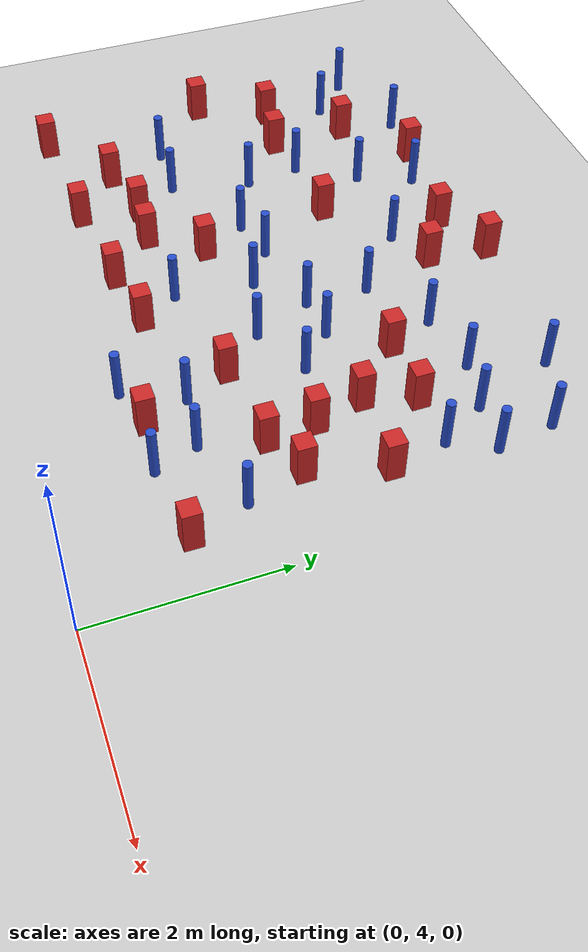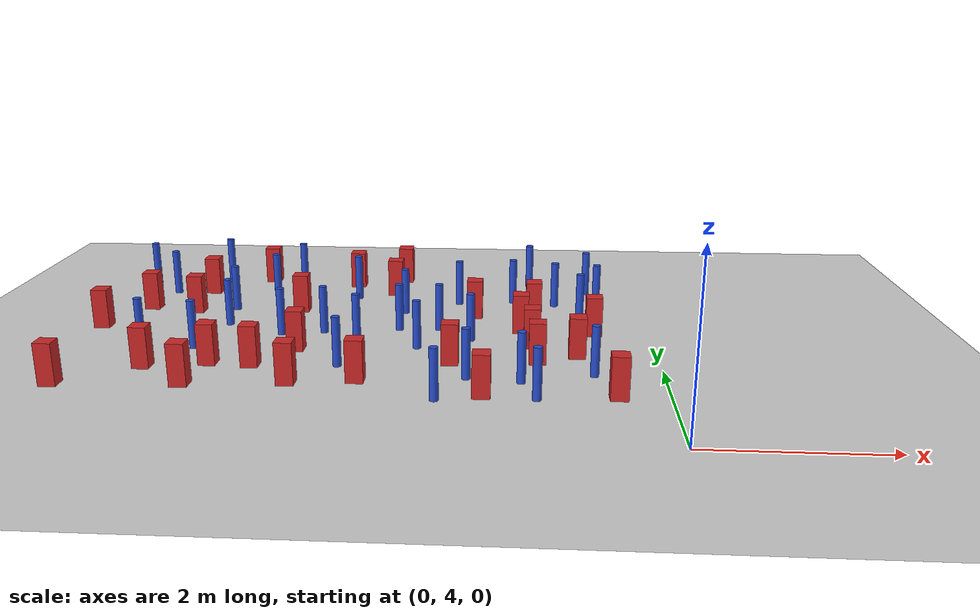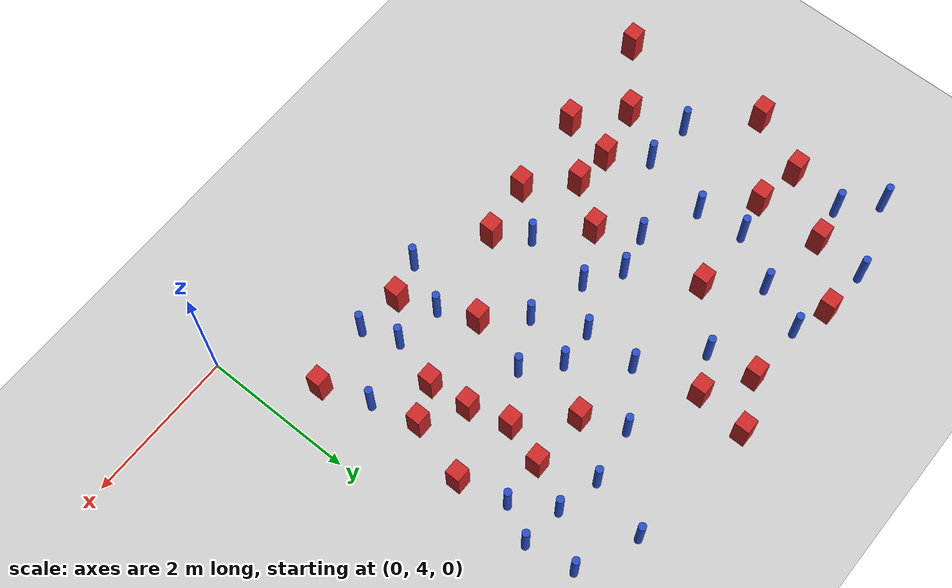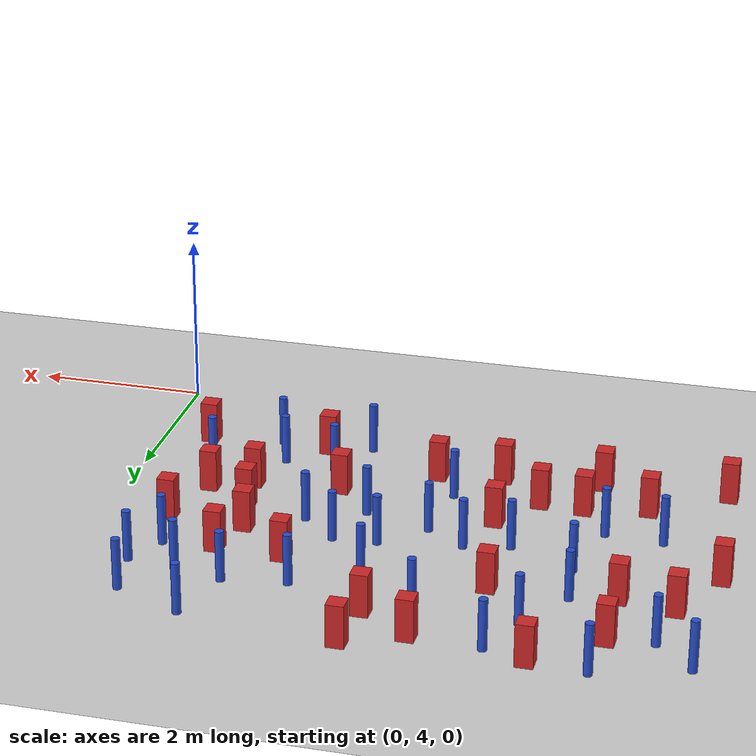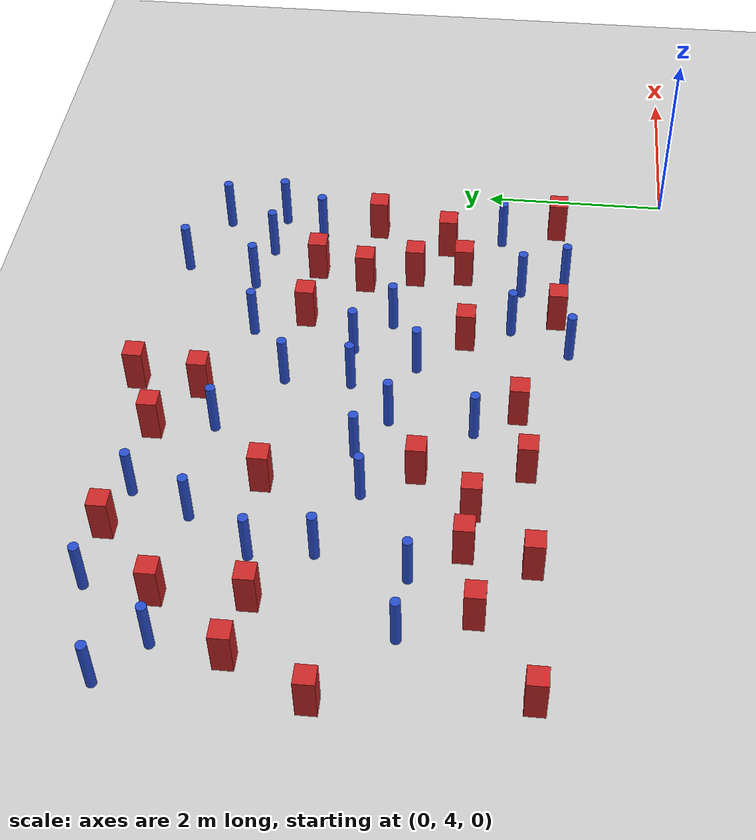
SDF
<sdf version="1.6">
 <world name="default">
  <model name="ground_plane">
   <static>1</static>
   <link name="link">
    <collision name="collision">
     <geometry><plane><normal>0 0 1</normal><size>100 100</size></plane></geometry>
     <surface><friction><ode><mu>100</mu><mu2>50</mu2></ode></friction></surface>
    </collision>
    <visual name="visual">
     <cast_shadows>0</cast_shadows>
     <geometry><plane><normal>0 0 1</normal><size>100 100</size></plane></geometry>
     <material>
      <ambient>1.0 1.0 1.0 1.0</ambient>
      <diffuse>0.8 0.8 0.8 1.0</diffuse>
      <specular>0.01 0.01 0.01 1.000000</specular>
     </material>
    </visual>
   </link>
  </model>
  <model name="square_post_obstacle0">
   <static>true</static>
   <pose>-2.43062324862 6.12856150608 1.91545236811e-07 -7.35059704564e-06 1.12565212e-07 2.39332434364e-05</pose>
   <link name="link">
    <pose>0 0 0.25 0 -0 0</pose>
    <inertial>
     <mass>100</mass>
     <inertia>
      <ixx>0.166667</ixx>
      <ixy>0</ixy>
      <ixz>0</ixz>
      <iyy>0.166667</iyy>
      <iyz>0</iyz>
      <izz>0.166667</izz>
     </inertia>
    </inertial>
    <collision name="collision"><geometry><box><size>.2 .2 .5</size></box></geometry></collision>
    <visual name="visual">
     <geometry><box><size>.2 .2 .5</size></box></geometry>
     <material>
      <script><name>Gazebo/Red</name><uri>file://media/materials/scripts/gazebo.material</uri></script>
     </material>
    </visual>
   </link>
  </model>
  <model name="pole_obstacle2">
   <static>true</static>
   <pose>-6.46132631482 8.68634267327 7.38925637345e-09 -8.471706928e-08 1.24976765081e-08 -1.74513093015e-07</pose>
   <link name="link">
    <pose>0 0 0.3 0 -0 0</pose>
    <inertial>
     <mass>1</mass>
     <inertia><ixx>0.145833</ixx><ixy>0</ixy><ixz>0</ixz><iyy>0.145833</iyy><iyz>0</iyz><izz>0.125</izz></inertia>
    </inertial>
    <collision name="collision">
     <geometry><cylinder><radius>0.05</radius><length>.6</length></cylinder></geometry>
    </collision>
    <visual name="visual">
     <geometry><cylinder><radius>0.05</radius><length>.6</length></cylinder></geometry>
     <material>
      <script><name>Gazebo/Blue</name><uri>file://media/materials/scripts/gazebo.material</uri></script>
     </material>
    </visual>
   </link>
  </model>
  <model name="pole_obstacle3">
   <static>true</static>
   <pose>-3.7190828894 5.9537499802 7.38925637345e-09 -8.47170692798e-08 1.24976765033e-08 -1.74513093019e-07</pose>
   <link name="link">
    <pose>0 0 0.3 0 -0 0</pose>
    <inertial>
     <mass>1</mass>
     <inertia><ixx>0.145833</ixx><ixy>0</ixy><ixz>0</ixz><iyy>0.145833</iyy><iyz>0</iyz><izz>0.125</izz></inertia>
    </inertial>
    <collision name="collision">
     <geometry><cylinder><radius>0.05</radius><length>.6</length></cylinder></geometry>
    </collision>
    <visual name="visual">
     <geometry><cylinder><radius>0.05</radius><length>.6</length></cylinder></geometry>
     <material>
      <script><name>Gazebo/Blue</name><uri>file://media/materials/scripts/gazebo.material</uri></script>
     </material>
    </visual>
   </link>
  </model>
  <model name="pole_obstacle6">
   <static>true</static>
   <pose>-5.550322576 6.45025046927 7.38925637345e-09 -8.47170692796e-08 1.24976764786e-08 -1.74513093032e-07</pose>
   <link name="link">
    <pose>0 0 0.3 0 -0 0</pose>
    <inertial>
     <mass>1</mass>
     <inertia><ixx>0.145833</ixx><ixy>0</ixy><ixz>0</ixz><iyy>0.145833</iyy><iyz>0</iyz><izz>0.125</izz></inertia>
    </inertial>
    <collision name="collision">
     <geometry><cylinder><radius>0.05</radius><length>.6</length></cylinder></geometry>
    </collision>
    <visual name="visual">
     <geometry><cylinder><radius>0.05</radius><length>.6</length></cylinder></geometry>
     <material>
      <script><name>Gazebo/Blue</name><uri>file://media/materials/scripts/gazebo.material</uri></script>
     </material>
    </visual>
   </link>
  </model>
  <model name="square_post_obstacle4">
   <static>true</static>
   <pose>-5.34353529852 5.29566429069 1.91545236811e-07 -7.35059704564e-06 1.12565212e-07 2.39332434364e-05</pose>
   <link name="link">
    <pose>0 0 0.25 0 -0 0</pose>
    <inertial>
     <mass>100</mass>
     <inertia>
      <ixx>0.166667</ixx>
      <ixy>0</ixy>
      <ixz>0</ixz>
      <iyy>0.166667</iyy>
      <iyz>0</iyz>
      <izz>0.166667</izz>
     </inertia>
    </inertial>
    <collision name="collision"><geometry><box><size>.2 .2 .5</size></box></geometry></collision>
    <visual name="visual">
     <geometry><box><size>.2 .2 .5</size></box></geometry>
     <material>
      <script><name>Gazebo/Red</name><uri>file://media/materials/scripts/gazebo.material</uri></script>
     </material>
    </visual>
   </link>
  </model>
  <model name="pole_obstacle11">
   <static>true</static>
   <pose>-4.75994385667 9.22691612218 7.38925637345e-09 -8.471706928e-08 1.24976765081e-08 -1.74513093015e-07</pose>
   <link name="link">
    <pose>0 0 0.3 0 -0 0</pose>
    <inertial>
     <mass>1</mass>
     <inertia><ixx>0.145833</ixx><ixy>0</ixy><ixz>0</ixz><iyy>0.145833</iyy><iyz>0</iyz><izz>0.125</izz></inertia>
    </inertial>
    <collision name="collision">
     <geometry><cylinder><radius>0.05</radius><length>.6</length></cylinder></geometry>
    </collision>
    <visual name="visual">
     <geometry><cylinder><radius>0.05</radius><length>.6</length></cylinder></geometry>
     <material>
      <script><name>Gazebo/Blue</name><uri>file://media/materials/scripts/gazebo.material</uri></script>
     </material>
    </visual>
   </link>
  </model>
  <model name="square_post_obstacle10">
   <static>true</static>
   <pose>-2.03097253095 5.16663899507 1.91545236811e-07 -7.35059704564e-06 1.12565212e-07 2.39332434364e-05</pose>
   <link name="link">
    <pose>0 0 0.25 0 -0 0</pose>
    <inertial>
     <mass>100</mass>
     <inertia>
      <ixx>0.166667</ixx>
      <ixy>0</ixy>
      <ixz>0</ixz>
      <iyy>0.166667</iyy>
      <iyz>0</iyz>
      <izz>0.166667</izz>
     </inertia>
    </inertial>
    <collision name="collision"><geometry><box><size>.2 .2 .5</size></box></geometry></collision>
    <visual name="visual">
     <geometry><box><size>.2 .2 .5</size></box></geometry>
     <material>
      <script><name>Gazebo/Red</name><uri>file://media/materials/scripts/gazebo.material</uri></script>
     </material>
    </visual>
   </link>
  </model>
  <model name="pole_obstacle23">
   <static>true</static>
   <pose>-3.85838187228 8.57557303017 7.38925637345e-09 -8.47170692793e-08 1.24976764408e-08 -1.74513093041e-07</pose>
   <link name="link">
    <pose>0 0 0.3 0 -0 0</pose>
    <inertial>
     <mass>1</mass>
     <inertia><ixx>0.145833</ixx><ixy>0</ixy><ixz>0</ixz><iyy>0.145833</iyy><iyz>0</iyz><izz>0.125</izz></inertia>
    </inertial>
    <collision name="collision">
     <geometry><cylinder><radius>0.05</radius><length>.6</length></cylinder></geometry>
    </collision>
    <visual name="visual">
     <geometry><cylinder><radius>0.05</radius><length>.6</length></cylinder></geometry>
     <material>
      <script><name>Gazebo/Blue</name><uri>file://media/materials/scripts/gazebo.material</uri></script>
     </material>
    </visual>
   </link>
  </model>
  <model name="pole_obstacle25">
   <static>true</static>
   <pose>-2.23034080362 6.92175021675 7.38925637345e-09 -8.47170692798e-08 1.24976765033e-08 -1.74513093019e-07</pose>
   <link name="link">
    <pose>0 0 0.3 0 -0 0</pose>
    <inertial>
     <mass>1</mass>
     <inertia><ixx>0.145833</ixx><ixy>0</ixy><ixz>0</ixz><iyy>0.145833</iyy><iyz>0</iyz><izz>0.125</izz></inertia>
    </inertial>
    <collision name="collision">
     <geometry><cylinder><radius>0.05</radius><length>.6</length></cylinder></geometry>
    </collision>
    <visual name="visual">
     <geometry><cylinder><radius>0.05</radius><length>.6</length></cylinder></geometry>
     <material>
      <script><name>Gazebo/Blue</name><uri>file://media/materials/scripts/gazebo.material</uri></script>
     </material>
    </visual>
   </link>
  </model>
  <model name="pole_obstacle26">
   <static>true</static>
   <pose>-0.854000648332 7.86369184011 7.38925637345e-09 -8.471706928e-08 1.24976765086e-08 -1.74513093015e-07</pose>
   <link name="link">
    <pose>0 0 0.3 0 -0 0</pose>
    <inertial>
     <mass>1</mass>
     <inertia><ixx>0.145833</ixx><ixy>0</ixy><ixz>0</ixz><iyy>0.145833</iyy><iyz>0</iyz><izz>0.125</izz></inertia>
    </inertial>
    <collision name="collision">
     <geometry><cylinder><radius>0.05</radius><length>.6</length></cylinder></geometry>
    </collision>
    <visual name="visual">
     <geometry><cylinder><radius>0.05</radius><length>.6</length></cylinder></geometry>
     <material>
      <script><name>Gazebo/Blue</name><uri>file://media/materials/scripts/gazebo.material</uri></script>
     </material>
    </visual>
   </link>
  </model>
  <model name="pole_obstacle42">
   <static>true</static>
   <pose>-2.452970948 8.4050137071 7.38925637345e-09 -8.47170692793e-08 1.24976764408e-08 -1.74513093041e-07</pose>
   <link name="link">
    <pose>0 0 0.3 0 -0 0</pose>
    <inertial>
     <mass>1</mass>
     <inertia><ixx>0.145833</ixx><ixy>0</ixy><ixz>0</ixz><iyy>0.145833</iyy><iyz>0</iyz><izz>0.125</izz></inertia>
    </inertial>
    <collision name="collision">
     <geometry><cylinder><radius>0.05</radius><length>.6</length></cylinder></geometry>
    </collision>
    <visual name="visual">
     <geometry><cylinder><radius>0.05</radius><length>.6</length></cylinder></geometry>
     <material>
      <script><name>Gazebo/Blue</name><uri>file://media/materials/scripts/gazebo.material</uri></script>
     </material>
    </visual>
   </link>
  </model>
  <model name="pole_obstacle48">
   <static>true</static>
   <pose>-0.718550864552 8.95690089374 7.38925637345e-09 -8.47170692797e-08 1.249767648e-08 -1.74513093032e-07</pose>
   <link name="link">
    <pose>0 0 0.3 0 -0 0</pose>
    <inertial>
     <mass>1</mass>
     <inertia><ixx>0.145833</ixx><ixy>0</ixy><ixz>0</ixz><iyy>0.145833</iyy><iyz>0</iyz><izz>0.125</izz></inertia>
    </inertial>
    <collision name="collision">
     <geometry><cylinder><radius>0.05</radius><length>.6</length></cylinder></geometry>
    </collision>
    <visual name="visual">
     <geometry><cylinder><radius>0.05</radius><length>.6</length></cylinder></geometry>
     <material>
      <script><name>Gazebo/Blue</name><uri>file://media/materials/scripts/gazebo.material</uri></script>
     </material>
    </visual>
   </link>
  </model>
  <model name="square_post_obstacle39">
   <static>true</static>
   <pose>-4.53960714771 7.98583875059 1.91545236811e-07 -7.35059704564e-06 1.12565212e-07 2.39332434364e-05</pose>
   <link name="link">
    <pose>0 0 0.25 0 -0 0</pose>
    <inertial>
     <mass>100</mass>
     <inertia>
      <ixx>0.166667</ixx>
      <ixy>0</ixy>
      <ixz>0</ixz>
      <iyy>0.166667</iyy>
      <iyz>0</iyz>
      <izz>0.166667</izz>
     </inertia>
    </inertial>
    <collision name="collision"><geometry><box><size>.2 .2 .5</size></box></geometry></collision>
    <visual name="visual">
     <geometry><box><size>.2 .2 .5</size></box></geometry>
     <material>
      <script><name>Gazebo/Red</name><uri>file://media/materials/scripts/gazebo.material</uri></script>
     </material>
    </visual>
   </link>
  </model>
  <model name="pole_obstacle54">
   <static>true</static>
   <pose>-1.7298561562 8.51346052864 7.38925637345e-09 -8.47170692798e-08 1.24976764881e-08 -1.74513093027e-07</pose>
   <link name="link">
    <pose>0 0 0.3 0 -0 0</pose>
    <inertial>
     <mass>1</mass>
     <inertia><ixx>0.145833</ixx><ixy>0</ixy><ixz>0</ixz><iyy>0.145833</iyy><iyz>0</iyz><izz>0.125</izz></inertia>
    </inertial>
    <collision name="collision">
     <geometry><cylinder><radius>0.05</radius><length>.6</length></cylinder></geometry>
    </collision>
    <visual name="visual">
     <geometry><cylinder><radius>0.05</radius><length>.6</length></cylinder></geometry>
     <material>
      <script><name>Gazebo/Blue</name><uri>file://media/materials/scripts/gazebo.material</uri></script>
     </material>
    </visual>
   </link>
  </model>
  <model name="pole_obstacle56">
   <static>true</static>
   <pose>-1.60601170656 5.56613001548 7.38925637345e-09 -8.47170692799e-08 1.24976765033e-08 -1.74513093018e-07</pose>
   <link name="link">
    <pose>0 0 0.3 0 -0 0</pose>
    <inertial>
     <mass>1</mass>
     <inertia><ixx>0.145833</ixx><ixy>0</ixy><ixz>0</ixz><iyy>0.145833</iyy><iyz>0</iyz><izz>0.125</izz></inertia>
    </inertial>
    <collision name="collision">
     <geometry><cylinder><radius>0.05</radius><length>.6</length></cylinder></geometry>
    </collision>
    <visual name="visual">
     <geometry><cylinder><radius>0.05</radius><length>.6</length></cylinder></geometry>
     <material>
      <script><name>Gazebo/Blue</name><uri>file://media/materials/scripts/gazebo.material</uri></script>
     </material>
    </visual>
   </link>
  </model>
  <model name="pole_obstacle57">
   <static>true</static>
   <pose>-2.52498924094 5.01974272409 7.38925637345e-09 -8.47170692798e-08 1.24976765033e-08 -1.74513093019e-07</pose>
   <link name="link">
    <pose>0 0 0.3 0 -0 0</pose>
    <inertial>
     <mass>1</mass>
     <inertia><ixx>0.145833</ixx><ixy>0</ixy><ixz>0</ixz><iyy>0.145833</iyy><iyz>0</iyz><izz>0.125</izz></inertia>
    </inertial>
    <collision name="collision">
     <geometry><cylinder><radius>0.05</radius><length>.6</length></cylinder></geometry>
    </collision>
    <visual name="visual">
     <geometry><cylinder><radius>0.05</radius><length>.6</length></cylinder></geometry>
     <material>
      <script><name>Gazebo/Blue</name><uri>file://media/materials/scripts/gazebo.material</uri></script>
     </material>
    </visual>
   </link>
  </model>
  <model name="square_post_obstacle51">
   <static>true</static>
   <pose>-6.56680382588 7.98346680709 1.91545236811e-07 -7.35059704564e-06 1.12565212e-07 2.39332434364e-05</pose>
   <link name="link">
    <pose>0 0 0.25 0 -0 0</pose>
    <inertial>
     <mass>100</mass>
     <inertia>
      <ixx>0.166667</ixx>
      <ixy>0</ixy>
      <ixz>0</ixz>
      <iyy>0.166667</iyy>
      <iyz>0</iyz>
      <izz>0.166667</izz>
     </inertia>
    </inertial>
    <collision name="collision"><geometry><box><size>.2 .2 .5</size></box></geometry></collision>
    <visual name="visual">
     <geometry><box><size>.2 .2 .5</size></box></geometry>
     <material>
      <script><name>Gazebo/Red</name><uri>file://media/materials/scripts/gazebo.material</uri></script>
     </material>
    </visual>
   </link>
  </model>
  <model name="square_post_obstacle53">
   <static>true</static>
   <pose>-3.4392146167 5.51961969222 1.91545236811e-07 -7.35059704564e-06 1.12565212e-07 2.39332434364e-05</pose>
   <link name="link">
    <pose>0 0 0.25 0 -0 0</pose>
    <inertial>
     <mass>100</mass>
     <inertia>
      <ixx>0.166667</ixx>
      <ixy>0</ixy>
      <ixz>0</ixz>
      <iyy>0.166667</iyy>
      <iyz>0</iyz>
      <izz>0.166667</izz>
     </inertia>
    </inertial>
    <collision name="collision"><geometry><box><size>.2 .2 .5</size></box></geometry></collision>
    <visual name="visual">
     <geometry><box><size>.2 .2 .5</size></box></geometry>
     <material>
      <script><name>Gazebo/Red</name><uri>file://media/materials/scripts/gazebo.material</uri></script>
     </material>
    </visual>
   </link>
  </model>
  <model name="pole_obstacle70">
   <static>true</static>
   <pose>-4.08409762204 7.12171928538 7.38925637345e-09 -8.47170692796e-08 1.24976764786e-08 -1.74513093032e-07</pose>
   <link name="link">
    <pose>0 0 0.3 0 -0 0</pose>
    <inertial>
     <mass>1</mass>
     <inertia><ixx>0.145833</ixx><ixy>0</ixy><ixz>0</ixz><iyy>0.145833</iyy><iyz>0</iyz><izz>0.125</izz></inertia>
    </inertial>
    <collision name="collision">
     <geometry><cylinder><radius>0.05</radius><length>.6</length></cylinder></geometry>
    </collision>
    <visual name="visual">
     <geometry><cylinder><radius>0.05</radius><length>.6</length></cylinder></geometry>
     <material>
      <script><name>Gazebo/Blue</name><uri>file://media/materials/scripts/gazebo.material</uri></script>
     </material>
    </visual>
   </link>
  </model>
  <model name="pole_obstacle73">
   <static>true</static>
   <pose>-3.14728516299 7.27240817746 7.38925637345e-09 -8.47170692794e-08 1.24976764468e-08 -1.7451309304e-07</pose>
   <link name="link">
    <pose>0 0 0.3 0 -0 0</pose>
    <inertial>
     <mass>1</mass>
     <inertia><ixx>0.145833</ixx><ixy>0</ixy><ixz>0</ixz><iyy>0.145833</iyy><iyz>0</iyz><izz>0.125</izz></inertia>
    </inertial>
    <collision name="collision">
     <geometry><cylinder><radius>0.05</radius><length>.6</length></cylinder></geometry>
    </collision>
    <visual name="visual">
     <geometry><cylinder><radius>0.05</radius><length>.6</length></cylinder></geometry>
     <material>
      <script><name>Gazebo/Blue</name><uri>file://media/materials/scripts/gazebo.material</uri></script>
     </material>
    </visual>
   </link>
  </model>
  <model name="square_post_obstacle77">
   <static>true</static>
   <pose>-5.94658987154 5.8068428309 1.91545236811e-07 -7.35059704564e-06 1.12565212e-07 2.39332434364e-05</pose>
   <link name="link">
    <pose>0 0 0.25 0 -0 0</pose>
    <inertial>
     <mass>100</mass>
     <inertia>
      <ixx>0.166667</ixx>
      <ixy>0</ixy>
      <ixz>0</ixz>
      <iyy>0.166667</iyy>
      <iyz>0</iyz>
      <izz>0.166667</izz>
     </inertia>
    </inertial>
    <collision name="collision"><geometry><box><size>.2 .2 .5</size></box></geometry></collision>
    <visual name="visual">
     <geometry><box><size>.2 .2 .5</size></box></geometry>
     <material>
      <script><name>Gazebo/Red</name><uri>file://media/materials/scripts/gazebo.material</uri></script>
     </material>
    </visual>
   </link>
  </model>
  <model name="square_post_obstacle83">
   <static>true</static>
   <pose>-1.47961324937 6.75000926548 1.91545236811e-07 -7.35059704564e-06 1.12565212e-07 2.39332434364e-05</pose>
   <link name="link">
    <pose>0 0 0.25 0 -0 0</pose>
    <inertial>
     <mass>100</mass>
     <inertia>
      <ixx>0.166667</ixx>
      <ixy>0</ixy>
      <ixz>0</ixz>
      <iyy>0.166667</iyy>
      <iyz>0</iyz>
      <izz>0.166667</izz>
     </inertia>
    </inertial>
    <collision name="collision"><geometry><box><size>.2 .2 .5</size></box></geometry></collision>
    <visual name="visual">
     <geometry><box><size>.2 .2 .5</size></box></geometry>
     <material>
      <script><name>Gazebo/Red</name><uri>file://media/materials/scripts/gazebo.material</uri></script>
     </material>
    </visual>
   </link>
  </model>
  <model name="square_post_obstacle87">
   <static>true</static>
   <pose>-2.21876503734 7.86705786862 1.91545236811e-07 -7.35059704564e-06 1.12565212e-07 2.39332434364e-05</pose>
   <link name="link">
    <pose>0 0 0.25 0 -0 0</pose>
    <inertial>
     <mass>100</mass>
     <inertia>
      <ixx>0.166667</ixx>
      <ixy>0</ixy>
      <ixz>0</ixz>
      <iyy>0.166667</iyy>
      <iyz>0</iyz>
      <izz>0.166667</izz>
     </inertia>
    </inertial>
    <collision name="collision"><geometry><box><size>.2 .2 .5</size></box></geometry></collision>
    <visual name="visual">
     <geometry><box><size>.2 .2 .5</size></box></geometry>
     <material>
      <script><name>Gazebo/Red</name><uri>file://media/materials/scripts/gazebo.material</uri></script>
     </material>
    </visual>
   </link>
  </model>
  <model name="pole_obstacle99">
   <static>true</static>
   <pose>-6.89775305528 9.10814572094 7.38925637345e-09 -8.471706928e-08 1.24976765081e-08 -1.74513093015e-07</pose>
   <link name="link">
    <pose>0 0 0.3 0 -0 0</pose>
    <inertial>
     <mass>1</mass>
     <inertia><ixx>0.145833</ixx><ixy>0</ixy><ixz>0</ixz><iyy>0.145833</iyy><iyz>0</iyz><izz>0.125</izz></inertia>
    </inertial>
    <collision name="collision">
     <geometry><cylinder><radius>0.05</radius><length>.6</length></cylinder></geometry>
    </collision>
    <visual name="visual">
     <geometry><cylinder><radius>0.05</radius><length>.6</length></cylinder></geometry>
     <material>
      <script><name>Gazebo/Blue</name><uri>file://media/materials/scripts/gazebo.material</uri></script>
     </material>
    </visual>
   </link>
  </model>
  <model name="square_post_obstacle101">
   <static>true</static>
   <pose>-3.29467387489 9.48894449638 1.91545236811e-07 -7.35059704564e-06 1.12565212e-07 2.39332434364e-05</pose>
   <link name="link">
    <pose>0 0 0.25 0 -0 0</pose>
    <inertial>
     <mass>100</mass>
     <inertia>
      <ixx>0.166667</ixx>
      <ixy>0</ixy>
      <ixz>0</ixz>
      <iyy>0.166667</iyy>
      <iyz>0</iyz>
      <izz>0.166667</izz>
     </inertia>
    </inertial>
    <collision name="collision"><geometry><box><size>.2 .2 .5</size></box></geometry></collision>
    <visual name="visual">
     <geometry><box><size>.2 .2 .5</size></box></geometry>
     <material>
      <script><name>Gazebo/Red</name><uri>file://media/materials/scripts/gazebo.material</uri></script>
     </material>
    </visual>
   </link>
  </model>
  <model name="square_post_obstacle103">
   <static>true</static>
   <pose>-5.23833796013 9.38292790658 1.91545236811e-07 -7.35059704564e-06 1.12565212e-07 2.39332434364e-05</pose>
   <link name="link">
    <pose>0 0 0.25 0 -0 0</pose>
    <inertial>
     <mass>100</mass>
     <inertia>
      <ixx>0.166667</ixx>
      <ixy>0</ixy>
      <ixz>0</ixz>
      <iyy>0.166667</iyy>
      <iyz>0</iyz>
      <izz>0.166667</izz>
     </inertia>
    </inertial>
    <collision name="collision"><geometry><box><size>.2 .2 .5</size></box></geometry></collision>
    <visual name="visual">
     <geometry><box><size>.2 .2 .5</size></box></geometry>
     <material>
      <script><name>Gazebo/Red</name><uri>file://media/materials/scripts/gazebo.material</uri></script>
     </material>
    </visual>
   </link>
  </model>
  <model name="square_post_obstacle116">
   <static>true</static>
   <pose>-4.30644833251 6.48403823066 1.91545236811e-07 -7.35059704564e-06 1.12565212e-07 2.39332434364e-05</pose>
   <link name="link">
    <pose>0 0 0.25 0 -0 0</pose>
    <inertial>
     <mass>100</mass>
     <inertia>
      <ixx>0.166667</ixx>
      <ixy>0</ixy>
      <ixz>0</ixz>
      <iyy>0.166667</iyy>
      <iyz>0</iyz>
      <izz>0.166667</izz>
     </inertia>
    </inertial>
    <collision name="collision"><geometry><box><size>.2 .2 .5</size></box></geometry></collision>
    <visual name="visual">
     <geometry><box><size>.2 .2 .5</size></box></geometry>
     <material>
      <script><name>Gazebo/Red</name><uri>file://media/materials/scripts/gazebo.material</uri></script>
     </material>
    </visual>
   </link>
  </model>
  <model name="square_post_obstacle120">
   <static>true</static>
   <pose>-0.568285200201 5.19795493188 1.91545236811e-07 -7.35059704564e-06 1.12565212e-07 2.39332434364e-05</pose>
   <link name="link">
    <pose>0 0 0.25 0 -0 0</pose>
    <inertial>
     <mass>100</mass>
     <inertia>
      <ixx>0.166667</ixx>
      <ixy>0</ixy>
      <ixz>0</ixz>
      <iyy>0.166667</iyy>
      <iyz>0</iyz>
      <izz>0.166667</izz>
     </inertia>
    </inertial>
    <collision name="collision"><geometry><box><size>.2 .2 .5</size></box></geometry></collision>
    <visual name="visual">
     <geometry><box><size>.2 .2 .5</size></box></geometry>
     <material>
      <script><name>Gazebo/Red</name><uri>file://media/materials/scripts/gazebo.material</uri></script>
     </material>
    </visual>
   </link>
  </model>
  <model name="square_post_obstacle123">
   <static>true</static>
   <pose>-4.71826131682 5.91924673082 1.91545236811e-07 -7.35059704564e-06 1.12565212e-07 2.39332434364e-05</pose>
   <link name="link">
    <pose>0 0 0.25 0 -0 0</pose>
    <inertial>
     <mass>100</mass>
     <inertia>
      <ixx>0.166667</ixx>
      <ixy>0</ixy>
      <ixz>0</ixz>
      <iyy>0.166667</iyy>
      <iyz>0</iyz>
      <izz>0.166667</izz>
     </inertia>
    </inertial>
    <collision name="collision"><geometry><box><size>.2 .2 .5</size></box></geometry></collision>
    <visual name="visual">
     <geometry><box><size>.2 .2 .5</size></box></geometry>
     <material>
      <script><name>Gazebo/Red</name><uri>file://media/materials/scripts/gazebo.material</uri></script>
     </material>
    </visual>
   </link>
  </model>
  <model name="square_post_obstacle126">
   <static>true</static>
   <pose>-6.77788573658 5.22467619786 1.91545236811e-07 -7.35059704564e-06 1.12565212e-07 2.39332434364e-05</pose>
   <link name="link">
    <pose>0 0 0.25 0 -0 0</pose>
    <inertial>
     <mass>100</mass>
     <inertia>
      <ixx>0.166667</ixx>
      <ixy>0</ixy>
      <ixz>0</ixz>
      <iyy>0.166667</iyy>
      <iyz>0</iyz>
      <izz>0.166667</izz>
     </inertia>
    </inertial>
    <collision name="collision"><geometry><box><size>.2 .2 .5</size></box></geometry></collision>
    <visual name="visual">
     <geometry><box><size>.2 .2 .5</size></box></geometry>
     <material>
      <script><name>Gazebo/Red</name><uri>file://media/materials/scripts/gazebo.material</uri></script>
     </material>
    </visual>
   </link>
  </model>
  <model name="square_post_obstacle136">
   <static>true</static>
   <pose>-0.711907172458 7.22957226487 1.91545236811e-07 -7.35059704564e-06 1.12565212e-07 2.39332434364e-05</pose>
   <link name="link">
    <pose>0 0 0.25 0 -0 0</pose>
    <inertial>
     <mass>100</mass>
     <inertia>
      <ixx>0.166667</ixx>
      <ixy>0</ixy>
      <ixz>0</ixz>
      <iyy>0.166667</iyy>
      <iyz>0</iyz>
      <izz>0.166667</izz>
     </inertia>
    </inertial>
    <collision name="collision"><geometry><box><size>.2 .2 .5</size></box></geometry></collision>
    <visual name="visual">
     <geometry><box><size>.2 .2 .5</size></box></geometry>
     <material>
      <script><name>Gazebo/Red</name><uri>file://media/materials/scripts/gazebo.material</uri></script>
     </material>
    </visual>
   </link>
  </model>
  <model name="square_post_obstacle137">
   <static>true</static>
   <pose>-5.22290029621 5.9552896464 1.91545236811e-07 -7.35059704564e-06 1.12565212e-07 2.39332434364e-05</pose>
   <link name="link">
    <pose>0 0 0.25 0 -0 0</pose>
    <inertial>
     <mass>100</mass>
     <inertia>
      <ixx>0.166667</ixx>
      <ixy>0</ixy>
      <ixz>0</ixz>
      <iyy>0.166667</iyy>
      <iyz>0</iyz>
      <izz>0.166667</izz>
     </inertia>
    </inertial>
    <collision name="collision"><geometry><box><size>.2 .2 .5</size></box></geometry></collision>
    <visual name="visual">
     <geometry><box><size>.2 .2 .5</size></box></geometry>
     <material>
      <script><name>Gazebo/Red</name><uri>file://media/materials/scripts/gazebo.material</uri></script>
     </material>
    </visual>
   </link>
  </model>
  <model name="square_post_obstacle140">
   <static>true</static>
   <pose>-1.42217197797 6.21484142884 1.91545236811e-07 -7.35059704564e-06 1.12565212e-07 2.39332434364e-05</pose>
   <link name="link">
    <pose>0 0 0.25 0 -0 0</pose>
    <inertial>
     <mass>100</mass>
     <inertia>
      <ixx>0.166667</ixx>
      <ixy>0</ixy>
      <ixz>0</ixz>
      <iyy>0.166667</iyy>
      <iyz>0</iyz>
      <izz>0.166667</izz>
     </inertia>
    </inertial>
    <collision name="collision"><geometry><box><size>.2 .2 .5</size></box></geometry></collision>
    <visual name="visual">
     <geometry><box><size>.2 .2 .5</size></box></geometry>
     <material>
      <script><name>Gazebo/Red</name><uri>file://media/materials/scripts/gazebo.material</uri></script>
     </material>
    </visual>
   </link>
  </model>
  <model name="pole_obstacle150">
   <static>true</static>
   <pose>-1.43893867629 5.09422807483 7.38925637345e-09 -8.47170692799e-08 1.24976765033e-08 -1.74513093018e-07</pose>
   <link name="link">
    <pose>0 0 0.3 0 -0 0</pose>
    <inertial>
     <mass>1</mass>
     <inertia><ixx>0.145833</ixx><ixy>0</ixy><ixz>0</ixz><iyy>0.145833</iyy><iyz>0</iyz><izz>0.125</izz></inertia>
    </inertial>
    <collision name="collision">
     <geometry><cylinder><radius>0.05</radius><length>.6</length></cylinder></geometry>
    </collision>
    <visual name="visual">
     <geometry><cylinder><radius>0.05</radius><length>.6</length></cylinder></geometry>
     <material>
      <script><name>Gazebo/Blue</name><uri>file://media/materials/scripts/gazebo.material</uri></script>
     </material>
    </visual>
   </link>
  </model>
  <model name="pole_obstacle155">
   <static>true</static>
   <pose>-1.5008751921 9.30033949816 7.38925637345e-09 -8.47170692798e-08 1.24976764881e-08 -1.74513093027e-07</pose>
   <link name="link">
    <pose>0 0 0.3 0 -0 0</pose>
    <inertial>
     <mass>1</mass>
     <inertia><ixx>0.145833</ixx><ixy>0</ixy><ixz>0</ixz><iyy>0.145833</iyy><iyz>0</iyz><izz>0.125</izz></inertia>
    </inertial>
    <collision name="collision">
     <geometry><cylinder><radius>0.05</radius><length>.6</length></cylinder></geometry>
    </collision>
    <visual name="visual">
     <geometry><cylinder><radius>0.05</radius><length>.6</length></cylinder></geometry>
     <material>
      <script><name>Gazebo/Blue</name><uri>file://media/materials/scripts/gazebo.material</uri></script>
     </material>
    </visual>
   </link>
  </model>
  <model name="square_post_obstacle158">
   <static>true</static>
   <pose>-0.952416384718 6.42479542054 1.91545236811e-07 -7.35059704564e-06 1.12565212e-07 2.39332434364e-05</pose>
   <link name="link">
    <pose>0 0 0.25 0 -0 0</pose>
    <inertial>
     <mass>100</mass>
     <inertia>
      <ixx>0.166667</ixx>
      <ixy>0</ixy>
      <ixz>0</ixz>
      <iyy>0.166667</iyy>
      <iyz>0</iyz>
      <izz>0.166667</izz>
     </inertia>
    </inertial>
    <collision name="collision"><geometry><box><size>.2 .2 .5</size></box></geometry></collision>
    <visual name="visual">
     <geometry><box><size>.2 .2 .5</size></box></geometry>
     <material>
      <script><name>Gazebo/Red</name><uri>file://media/materials/scripts/gazebo.material</uri></script>
     </material>
    </visual>
   </link>
  </model>
  <model name="pole_obstacle170">
   <static>true</static>
   <pose>-5.34972262546 7.3499673399 7.38925637345e-09 -8.47170692796e-08 1.24976764786e-08 -1.74513093032e-07</pose>
   <link name="link">
    <pose>0 0 0.3 0 -0 0</pose>
    <inertial>
     <mass>1</mass>
     <inertia><ixx>0.145833</ixx><ixy>0</ixy><ixz>0</ixz><iyy>0.145833</iyy><iyz>0</iyz><izz>0.125</izz></inertia>
    </inertial>
    <collision name="collision">
     <geometry><cylinder><radius>0.05</radius><length>.6</length></cylinder></geometry>
    </collision>
    <visual name="visual">
     <geometry><cylinder><radius>0.05</radius><length>.6</length></cylinder></geometry>
     <material>
      <script><name>Gazebo/Blue</name><uri>file://media/materials/scripts/gazebo.material</uri></script>
     </material>
    </visual>
   </link>
  </model>
  <model name="pole_obstacle172">
   <static>true</static>
   <pose>-2.64533105179 7.30266624161 7.38925637345e-09 -8.47170692798e-08 1.24976765033e-08 -1.74513093019e-07</pose>
   <link name="link">
    <pose>0 0 0.3 0 -0 0</pose>
    <inertial>
     <mass>1</mass>
     <inertia><ixx>0.145833</ixx><ixy>0</ixy><ixz>0</ixz><iyy>0.145833</iyy><iyz>0</iyz><izz>0.125</izz></inertia>
    </inertial>
    <collision name="collision">
     <geometry><cylinder><radius>0.05</radius><length>.6</length></cylinder></geometry>
    </collision>
    <visual name="visual">
     <geometry><cylinder><radius>0.05</radius><length>.6</length></cylinder></geometry>
     <material>
      <script><name>Gazebo/Blue</name><uri>file://media/materials/scripts/gazebo.material</uri></script>
     </material>
    </visual>
   </link>
  </model>
  <model name="pole_obstacle174">
   <static>true</static>
   <pose>-4.60081254675 7.0043653173 7.38925637345e-09 -8.47170692796e-08 1.24976764786e-08 -1.74513093032e-07</pose>
   <link name="link">
    <pose>0 0 0.3 0 -0 0</pose>
    <inertial>
     <mass>1</mass>
     <inertia><ixx>0.145833</ixx><ixy>0</ixy><ixz>0</ixz><iyy>0.145833</iyy><iyz>0</iyz><izz>0.125</izz></inertia>
    </inertial>
    <collision name="collision">
     <geometry><cylinder><radius>0.05</radius><length>.6</length></cylinder></geometry>
    </collision>
    <visual name="visual">
     <geometry><cylinder><radius>0.05</radius><length>.6</length></cylinder></geometry>
     <material>
      <script><name>Gazebo/Blue</name><uri>file://media/materials/scripts/gazebo.material</uri></script>
     </material>
    </visual>
   </link>
  </model>
  <model name="pole_obstacle179">
   <static>true</static>
   <pose>-1.16662379604 8.38296154727 7.38925637345e-09 -8.47170692798e-08 1.24976764881e-08 -1.74513093027e-07</pose>
   <link name="link">
    <pose>0 0 0.3 0 -0 0</pose>
    <inertial>
     <mass>1</mass>
     <inertia><ixx>0.145833</ixx><ixy>0</ixy><ixz>0</ixz><iyy>0.145833</iyy><iyz>0</iyz><izz>0.125</izz></inertia>
    </inertial>
    <collision name="collision">
     <geometry><cylinder><radius>0.05</radius><length>.6</length></cylinder></geometry>
    </collision>
    <visual name="visual">
     <geometry><cylinder><radius>0.05</radius><length>.6</length></cylinder></geometry>
     <material>
      <script><name>Gazebo/Blue</name><uri>file://media/materials/scripts/gazebo.material</uri></script>
     </material>
    </visual>
   </link>
  </model>
  <model name="square_post_obstacle185">
   <static>true</static>
   <pose>-1.4507389994 7.83297223104 1.91545236811e-07 -7.35059704564e-06 1.12565212e-07 2.39332434364e-05</pose>
   <link name="link">
    <pose>0 0 0.25 0 -0 0</pose>
    <inertial>
     <mass>100</mass>
     <inertia>
      <ixx>0.166667</ixx>
      <ixy>0</ixy>
      <ixz>0</ixz>
      <iyy>0.166667</iyy>
      <iyz>0</iyz>
      <izz>0.166667</izz>
     </inertia>
    </inertial>
    <collision name="collision"><geometry><box><size>.2 .2 .5</size></box></geometry></collision>
    <visual name="visual">
     <geometry><box><size>.2 .2 .5</size></box></geometry>
     <material>
      <script><name>Gazebo/Red</name><uri>file://media/materials/scripts/gazebo.material</uri></script>
     </material>
    </visual>
   </link>
  </model>
  <model name="square_post_obstacle188">
   <static>true</static>
   <pose>-3.95237181947 9.19105125695 1.91545236811e-07 -7.35059704564e-06 1.12565212e-07 2.39332434364e-05</pose>
   <link name="link">
    <pose>0 0 0.25 0 -0 0</pose>
    <inertial>
     <mass>100</mass>
     <inertia>
      <ixx>0.166667</ixx>
      <ixy>0</ixy>
      <ixz>0</ixz>
      <iyy>0.166667</iyy>
      <iyz>0</iyz>
      <izz>0.166667</izz>
     </inertia>
    </inertial>
    <collision name="collision"><geometry><box><size>.2 .2 .5</size></box></geometry></collision>
    <visual name="visual">
     <geometry><box><size>.2 .2 .5</size></box></geometry>
     <material>
      <script><name>Gazebo/Red</name><uri>file://media/materials/scripts/gazebo.material</uri></script>
     </material>
    </visual>
   </link>
  </model>
  <model name="square_post_obstacle193">
   <static>true</static>
   <pose>-5.93532078814 7.87381335285 1.91545236811e-07 -7.35059704564e-06 1.12565212e-07 2.39332434364e-05</pose>
   <link name="link">
    <pose>0 0 0.25 0 -0 0</pose>
    <inertial>
     <mass>100</mass>
     <inertia>
      <ixx>0.166667</ixx>
      <ixy>0</ixy>
      <ixz>0</ixz>
      <iyy>0.166667</iyy>
      <iyz>0</iyz>
      <izz>0.166667</izz>
     </inertia>
    </inertial>
    <collision name="collision"><geometry><box><size>.2 .2 .5</size></box></geometry></collision>
    <visual name="visual">
     <geometry><box><size>.2 .2 .5</size></box></geometry>
     <material>
      <script><name>Gazebo/Red</name><uri>file://media/materials/scripts/gazebo.material</uri></script>
     </material>
    </visual>
   </link>
  </model>
  <model name="square_post_obstacle197">
   <static>true</static>
   <pose>-3.36836939142 8.807403037 1.91545236811e-07 -7.35059704564e-06 1.12565212e-07 2.39332434364e-05</pose>
   <link name="link">
    <pose>0 0 0.25 0 -0 0</pose>
    <inertial>
     <mass>100</mass>
     <inertia>
      <ixx>0.166667</ixx>
      <ixy>0</ixy>
      <ixz>0</ixz>
      <iyy>0.166667</iyy>
      <iyz>0</iyz>
      <izz>0.166667</izz>
     </inertia>
    </inertial>
    <collision name="collision"><geometry><box><size>.2 .2 .5</size></box></geometry></collision>
    <visual name="visual">
     <geometry><box><size>.2 .2 .5</size></box></geometry>
     <material>
      <script><name>Gazebo/Red</name><uri>file://media/materials/scripts/gazebo.material</uri></script>
     </material>
    </visual>
   </link>
  </model>
  <model name="pole_obstacle190">
   <static>true</static>
   <pose>-3.14565097775 7.97195519998 7.38925637345e-09 -8.471706928e-08 1.24976765193e-08 -1.74513093011e-07</pose>
   <link name="link">
    <pose>0 0 0.3 0 -0 0</pose>
    <inertial>
     <mass>1</mass>
     <inertia><ixx>0.145833</ixx><ixy>0</ixy><ixz>0</ixz><iyy>0.145833</iyy><iyz>0</iyz><izz>0.125</izz></inertia>
    </inertial>
    <collision name="collision">
     <geometry><cylinder><radius>0.05</radius><length>.6</length></cylinder></geometry>
    </collision>
    <visual name="visual">
     <geometry><cylinder><radius>0.05</radius><length>.6</length></cylinder></geometry>
     <material>
      <script><name>Gazebo/Blue</name><uri>file://media/materials/scripts/gazebo.material</uri></script>
     </material>
    </visual>
   </link>
  </model>
  <model name="square_post_obstacle200">
   <static>true</static>
   <pose>-1.62079350188 7.28993948817 1.91545236811e-07 -7.35059704564e-06 1.12565212e-07 2.39332434364e-05</pose>
   <link name="link">
    <pose>0 0 0.25 0 -0 0</pose>
    <inertial>
     <mass>100</mass>
     <inertia>
      <ixx>0.166667</ixx>
      <ixy>0</ixy>
      <ixz>0</ixz>
      <iyy>0.166667</iyy>
      <iyz>0</iyz>
      <izz>0.166667</izz>
     </inertia>
    </inertial>
    <collision name="collision"><geometry><box><size>.2 .2 .5</size></box></geometry></collision>
    <visual name="visual">
     <geometry><box><size>.2 .2 .5</size></box></geometry>
     <material>
      <script><name>Gazebo/Red</name><uri>file://media/materials/scripts/gazebo.material</uri></script>
     </material>
    </visual>
   </link>
  </model>
  <model name="square_post_obstacle201">
   <static>true</static>
   <pose>-6.94608775609 7.1869578545 1.91545236811e-07 -7.35059704564e-06 1.12565212e-07 2.39332434364e-05</pose>
   <link name="link">
    <pose>0 0 0.25 0 -0 0</pose>
    <inertial>
     <mass>100</mass>
     <inertia>
      <ixx>0.166667</ixx>
      <ixy>0</ixy>
      <ixz>0</ixz>
      <iyy>0.166667</iyy>
      <iyz>0</iyz>
      <izz>0.166667</izz>
     </inertia>
    </inertial>
    <collision name="collision"><geometry><box><size>.2 .2 .5</size></box></geometry></collision>
    <visual name="visual">
     <geometry><box><size>.2 .2 .5</size></box></geometry>
     <material>
      <script><name>Gazebo/Red</name><uri>file://media/materials/scripts/gazebo.material</uri></script>
     </material>
    </visual>
   </link>
  </model>
  <model name="square_post_obstacle205">
   <static>true</static>
   <pose>-4.19033665295 5.40450804712 1.91545236811e-07 -7.35059704564e-06 1.12565212e-07 2.39332434364e-05</pose>
   <link name="link">
    <pose>0 0 0.25 0 -0 0</pose>
    <inertial>
     <mass>100</mass>
     <inertia>
      <ixx>0.166667</ixx>
      <ixy>0</ixy>
      <ixz>0</ixz>
      <iyy>0.166667</iyy>
      <iyz>0</iyz>
      <izz>0.166667</izz>
     </inertia>
    </inertial>
    <collision name="collision"><geometry><box><size>.2 .2 .5</size></box></geometry></collision>
    <visual name="visual">
     <geometry><box><size>.2 .2 .5</size></box></geometry>
     <material>
      <script><name>Gazebo/Red</name><uri>file://media/materials/scripts/gazebo.material</uri></script>
     </material>
    </visual>
   </link>
  </model>
  <model name="square_post_obstacle208">
   <static>true</static>
   <pose>-5.95310863825 8.76320521393 1.91545236811e-07 -7.35059704564e-06 1.12565212e-07 2.39332434364e-05</pose>
   <link name="link">
    <pose>0 0 0.25 0 -0 0</pose>
    <inertial>
     <mass>100</mass>
     <inertia>
      <ixx>0.166667</ixx>
      <ixy>0</ixy>
      <ixz>0</ixz>
      <iyy>0.166667</iyy>
      <iyz>0</iyz>
      <izz>0.166667</izz>
     </inertia>
    </inertial>
    <collision name="collision"><geometry><box><size>.2 .2 .5</size></box></geometry></collision>
    <visual name="visual">
     <geometry><box><size>.2 .2 .5</size></box></geometry>
     <material>
      <script><name>Gazebo/Red</name><uri>file://media/materials/scripts/gazebo.material</uri></script>
     </material>
    </visual>
   </link>
  </model>
  <model name="pole_obstacle193">
   <static>true</static>
   <pose>-3.62702870742 6.82869651001 7.38925637345e-09 -8.47170692794e-08 1.24976764468e-08 -1.7451309304e-07</pose>
   <link name="link">
    <pose>0 0 0.3 0 -0 0</pose>
    <inertial>
     <mass>1</mass>
     <inertia><ixx>0.145833</ixx><ixy>0</ixy><ixz>0</ixz><iyy>0.145833</iyy><iyz>0</iyz><izz>0.125</izz></inertia>
    </inertial>
    <collision name="collision">
     <geometry><cylinder><radius>0.05</radius><length>.6</length></cylinder></geometry>
    </collision>
    <visual name="visual">
     <geometry><cylinder><radius>0.05</radius><length>.6</length></cylinder></geometry>
     <material>
      <script><name>Gazebo/Blue</name><uri>file://media/materials/scripts/gazebo.material</uri></script>
     </material>
    </visual>
   </link>
  </model>
  <model name="pole_obstacle195">
   <static>true</static>
   <pose>-6.21100017206 6.49340075041 7.38925637345e-09 -8.47170692796e-08 1.24976764786e-08 -1.74513093032e-07</pose>
   <link name="link">
    <pose>0 0 0.3 0 -0 0</pose>
    <inertial>
     <mass>1</mass>
     <inertia><ixx>0.145833</ixx><ixy>0</ixy><ixz>0</ixz><iyy>0.145833</iyy><iyz>0</iyz><izz>0.125</izz></inertia>
    </inertial>
    <collision name="collision">
     <geometry><cylinder><radius>0.05</radius><length>.6</length></cylinder></geometry>
    </collision>
    <visual name="visual">
     <geometry><cylinder><radius>0.05</radius><length>.6</length></cylinder></geometry>
     <material>
      <script><name>Gazebo/Blue</name><uri>file://media/materials/scripts/gazebo.material</uri></script>
     </material>
    </visual>
   </link>
  </model>
  <model name="pole_obstacle205">
   <static>true</static>
   <pose>-5.88811565585 9.43435258199 7.38925637345e-09 -8.471706928e-08 1.24976765081e-08 -1.74513093015e-07</pose>
   <link name="link">
    <pose>0 0 0.3 0 -0 0</pose>
    <inertial>
     <mass>1</mass>
     <inertia><ixx>0.145833</ixx><ixy>0</ixy><ixz>0</ixz><iyy>0.145833</iyy><iyz>0</iyz><izz>0.125</izz></inertia>
    </inertial>
    <collision name="collision">
     <geometry><cylinder><radius>0.05</radius><length>.6</length></cylinder></geometry>
    </collision>
    <visual name="visual">
     <geometry><cylinder><radius>0.05</radius><length>.6</length></cylinder></geometry>
     <material>
      <script><name>Gazebo/Blue</name><uri>file://media/materials/scripts/gazebo.material</uri></script>
     </material>
    </visual>
   </link>
  </model>
  <model name="pole_obstacle217">
   <static>true</static>
   <pose>-2.86257722663 6.61213472641 7.38925637345e-09 -8.47170692798e-08 1.24976765033e-08 -1.74513093019e-07</pose>
   <link name="link">
    <pose>0 0 0.3 0 -0 0</pose>
    <inertial>
     <mass>1</mass>
     <inertia><ixx>0.145833</ixx><ixy>0</ixy><ixz>0</ixz><iyy>0.145833</iyy><iyz>0</iyz><izz>0.125</izz></inertia>
    </inertial>
    <collision name="collision">
     <geometry><cylinder><radius>0.05</radius><length>.6</length></cylinder></geometry>
    </collision>
    <visual name="visual">
     <geometry><cylinder><radius>0.05</radius><length>.6</length></cylinder></geometry>
     <material>
      <script><name>Gazebo/Blue</name><uri>file://media/materials/scripts/gazebo.material</uri></script>
     </material>
    </visual>
   </link>
  </model>
  <model name="pole_obstacle223">
   <static>true</static>
   <pose>-0.613267396826 8.32373334521 7.38925637345e-09 -8.47170692797e-08 1.249767648e-08 -1.74513093032e-07</pose>
   <link name="link">
    <pose>0 0 0.3 0 -0 0</pose>
    <inertial>
     <mass>1</mass>
     <inertia><ixx>0.145833</ixx><ixy>0</ixy><ixz>0</ixz><iyy>0.145833</iyy><iyz>0</iyz><izz>0.125</izz></inertia>
    </inertial>
    <collision name="collision">
     <geometry><cylinder><radius>0.05</radius><length>.6</length></cylinder></geometry>
    </collision>
    <visual name="visual">
     <geometry><cylinder><radius>0.05</radius><length>.6</length></cylinder></geometry>
     <material>
      <script><name>Gazebo/Blue</name><uri>file://media/materials/scripts/gazebo.material</uri></script>
     </material>
    </visual>
   </link>
  </model>
  <model name="pole_obstacle231">
   <static>true</static>
   <pose>-5.42506999043 7.97469002078 7.38925637345e-09 -8.47170692798e-08 1.24976764875e-08 -1.74513093028e-07</pose>
   <link name="link">
    <pose>0 0 0.3 0 -0 0</pose>
    <inertial>
     <mass>1</mass>
     <inertia><ixx>0.145833</ixx><ixy>0</ixy><ixz>0</ixz><iyy>0.145833</iyy><iyz>0</iyz><izz>0.125</izz></inertia>
    </inertial>
    <collision name="collision">
     <geometry><cylinder><radius>0.05</radius><length>.6</length></cylinder></geometry>
    </collision>
    <visual name="visual">
     <geometry><cylinder><radius>0.05</radius><length>.6</length></cylinder></geometry>
     <material>
      <script><name>Gazebo/Blue</name><uri>file://media/materials/scripts/gazebo.material</uri></script>
     </material>
    </visual>
   </link>
  </model>
  <model name="pole_obstacle232">
   <static>true</static>
   <pose>-0.786270990425 5.81551002078 7.38925637345e-09 -8.471706928e-08 1.24976765118e-08 -1.74513093013e-07</pose>
   <link name="link">
    <pose>0 0 0.3 0 -0 0</pose>
    <inertial>
     <mass>1</mass>
     <inertia><ixx>0.145833</ixx><ixy>0</ixy><ixz>0</ixz><iyy>0.145833</iyy><iyz>0</iyz><izz>0.125</izz></inertia>
    </inertial>
    <collision name="collision">
     <geometry><cylinder><radius>0.05</radius><length>.6</length></cylinder></geometry>
    </collision>
    <visual name="visual">
     <geometry><cylinder><radius>0.05</radius><length>.6</length></cylinder></geometry>
     <material>
      <script><name>Gazebo/Blue</name><uri>file://media/materials/scripts/gazebo.material</uri></script>
     </material>
    </visual>
   </link>
  </model>
  <model name="pole_obstacle236">
   <static>true</static>
   <pose>-2.21957999043 5.64843002078 7.38925637345e-09 -8.47170692794e-08 1.24976764468e-08 -1.7451309304e-07</pose>
   <link name="link">
    <pose>0 0 0.3 0 -0 0</pose>
    <inertial>
     <mass>1</mass>
     <inertia><ixx>0.145833</ixx><ixy>0</ixy><ixz>0</ixz><iyy>0.145833</iyy><iyz>0</iyz><izz>0.125</izz></inertia>
    </inertial>
    <collision name="collision">
     <geometry><cylinder><radius>0.05</radius><length>.6</length></cylinder></geometry>
    </collision>
    <visual name="visual">
     <geometry><cylinder><radius>0.05</radius><length>.6</length></cylinder></geometry>
     <material>
      <script><name>Gazebo/Blue</name><uri>file://media/materials/scripts/gazebo.material</uri></script>
     </material>
    </visual>
   </link>
  </model>
  <model name="pole_obstacle239">
   <static>true</static>
   <pose>-5.01474999043 8.61765002078 7.38925637345e-09 -8.471706928e-08 1.24976765081e-08 -1.74513093015e-07</pose>
   <link name="link">
    <pose>0 0 0.3 0 -0 0</pose>
    <inertial>
     <mass>1</mass>
     <inertia><ixx>0.145833</ixx><ixy>0</ixy><ixz>0</ixz><iyy>0.145833</iyy><iyz>0</iyz><izz>0.125</izz></inertia>
    </inertial>
    <collision name="collision">
     <geometry><cylinder><radius>0.05</radius><length>.6</length></cylinder></geometry>
    </collision>
    <visual name="visual">
     <geometry><cylinder><radius>0.05</radius><length>.6</length></cylinder></geometry>
     <material>
      <script><name>Gazebo/Blue</name><uri>file://media/materials/scripts/gazebo.material</uri></script>
     </material>
    </visual>
   </link>
  </model>
 </world>
</sdf>
